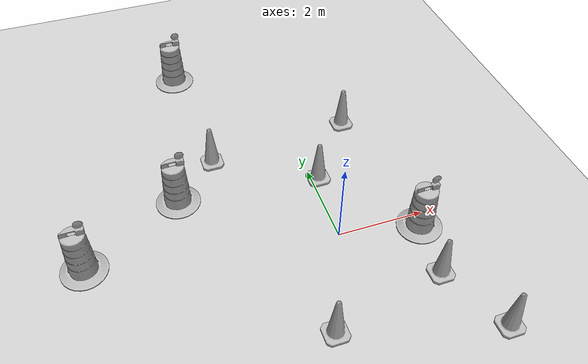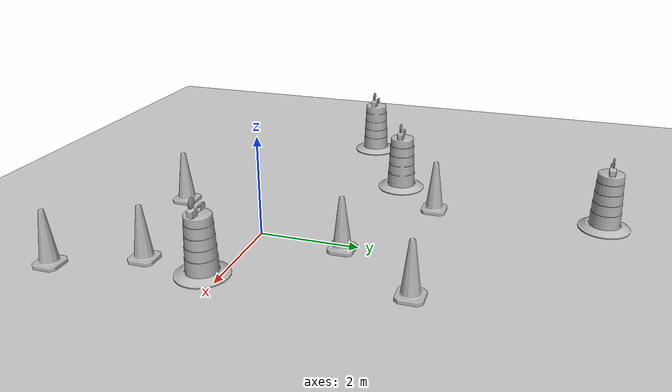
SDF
<sdf version="1.7">
 <world name="default">
  <light name="sun" type="directional">
   <pose>0 0 10 0 -0 0</pose>
   <diffuse>0.8 0.8 0.8 1</diffuse>
   <specular>0.2 0.2 0.2 1</specular>
   <attenuation>
    <range>1000</range>
    <constant>0.9</constant>
    <linear>0.01</linear>
    <quadratic>0.001</quadratic>
   </attenuation>
   <direction>-0.5 0.1 -0.9</direction>
   <spot><inner_angle>0</inner_angle><outer_angle>0</outer_angle><falloff>0</falloff></spot>
  </light>
  <model name="ground_plane">
   <static>1</static>
   <link name="link">
    <collision name="collision">
     <geometry><plane><normal>0 0 1</normal><size>100 100</size></plane></geometry>
     <surface>
      <contact><collide_bitmask>65535</collide_bitmask></contact>
      <friction><ode><mu>100</mu><mu2>50</mu2></ode></friction>
     </surface>
    </collision>
    <visual name="visual">
     <cast_shadows>0</cast_shadows>
     <geometry><plane><normal>0 0 1</normal><size>100 100</size></plane></geometry>
     <material>
      <script><uri>file://media/materials/scripts/gazebo.material</uri><name>Gazebo/Grey</name></script>
     </material>
    </visual>
   </link>
  </model>
  <gravity>0 0 -9.8</gravity>
  <magnetic_field>6e-06 2.3e-05 -4.2e-05</magnetic_field>
  <atmosphere type="adiabatic"/>
  <physics type="ode">
   <max_step_size>0.001</max_step_size>
   <real_time_factor>1</real_time_factor>
   <real_time_update_rate>1000</real_time_update_rate>
  </physics>
  <scene><ambient>0.4 0.4 0.4 1</ambient><background>0.7 0.7 0.7 1</background><shadows>1</shadows></scene>
  <audio><device>default</device></audio>
  <spherical_coordinates>
   <surface_model>EARTH_WGS84</surface_model>
   <latitude_deg>0</latitude_deg>
   <longitude_deg>0</longitude_deg>
   <elevation>0</elevation>
   <heading_deg>0</heading_deg>
  </spherical_coordinates>
  <model name="Construction Barrel">
   <link name="link">
    <inertial>
     <pose>0 0 0.4 0 -0 0</pose>
     <mass>500</mass>
     <inertia><ixx>51.2096</ixx><iyy>51.2096</iyy><izz>25</izz><ixy>0</ixy><ixz>0</ixz><iyz>0</iyz></inertia>
    </inertial>
    <collision name="collision">
     <geometry><mesh><uri>model://construction_barrel/meshes/construction_barrel.dae</uri></mesh></geometry>
    </collision>
    <visual name="visual">
     <geometry><mesh><uri>model://construction_barrel/meshes/construction_barrel.dae</uri></mesh></geometry>
    </visual>
   </link>
   <pose>-3.12375 2.06456 -1e-06 -8e-06 -2e-06 -2.1e-05</pose>
  </model>
  <model name="Construction Cone">
   <link name="link">
    <collision name="collision">
     <geometry>
      <mesh><scale>10 10 10</scale><uri>model://construction_cone/meshes/construction_cone.dae</uri></mesh>
     </geometry>
    </collision>
    <visual name="visual">
     <geometry>
      <mesh><scale>10 10 10</scale><uri>model://construction_cone/meshes/construction_cone.dae</uri></mesh>
     </geometry>
    </visual>
    <inertial>
     <inertia><ixx>1</ixx><ixy>0</ixy><ixz>0</ixz><iyy>1</iyy><iyz>0</iyz><izz>1</izz></inertia>
     <mass>1</mass>
    </inertial>
   </link>
   <pose>0.17451 1.72609 -0 0 -0 0</pose>
  </model>
  <model name="Construction Cone_0">
   <link name="link">
    <collision name="collision">
     <geometry>
      <mesh><scale>10 10 10</scale><uri>model://construction_cone/meshes/construction_cone.dae</uri></mesh>
     </geometry>
    </collision>
    <visual name="visual">
     <geometry>
      <mesh><scale>10 10 10</scale><uri>model://construction_cone/meshes/construction_cone.dae</uri></mesh>
     </geometry>
    </visual>
    <inertial>
     <inertia><ixx>1</ixx><ixy>0</ixy><ixz>0</ixz><iyy>1</iyy><iyz>0</iyz><izz>1</izz></inertia>
     <mass>1</mass>
    </inertial>
   </link>
   <pose>1.61753 -1.6118 -0 0 -1e-06 0</pose>
  </model>
  <model name="Construction Cone_1">
   <link name="link">
    <collision name="collision">
     <geometry>
      <mesh><scale>10 10 10</scale><uri>model://construction_cone/meshes/construction_cone.dae</uri></mesh>
     </geometry>
    </collision>
    <visual name="visual">
     <geometry>
      <mesh><scale>10 10 10</scale><uri>model://construction_cone/meshes/construction_cone.dae</uri></mesh>
     </geometry>
    </visual>
    <inertial>
     <inertia><ixx>1</ixx><ixy>0</ixy><ixz>0</ixz><iyy>1</iyy><iyz>0</iyz><izz>1</izz></inertia>
     <mass>1</mass>
    </inertial>
   </link>
   <pose>-2.07505 3.03679 -0 0 -0 0</pose>
  </model>
  <model name="Construction Barrel_1">
   <link name="link">
    <inertial>
     <pose>0 0 0.4 0 -0 0</pose>
     <mass>500</mass>
     <inertia><ixx>51.2096</ixx><iyy>51.2096</iyy><izz>25</izz><ixy>0</ixy><ixz>0</ixz><iyz>0</iyz></inertia>
    </inertial>
    <collision name="collision">
     <geometry><mesh><uri>model://construction_barrel/meshes/construction_barrel.dae</uri></mesh></geometry>
    </collision>
    <visual name="visual">
     <geometry><mesh><uri>model://construction_barrel/meshes/construction_barrel.dae</uri></mesh></geometry>
    </visual>
   </link>
   <pose>1.77854 -0.334593 -2e-06 8e-06 -4e-06 -1.5e-05</pose>
  </model>
  <model name="Construction Barrel_2">
   <link name="link">
    <inertial>
     <pose>0 0 0.4 0 -0 0</pose>
     <mass>500</mass>
     <inertia><ixx>51.2096</ixx><iyy>51.2096</iyy><izz>25</izz><ixy>0</ixy><ixz>0</ixz><iyz>0</iyz></inertia>
    </inertial>
    <collision name="collision">
     <geometry><mesh><uri>model://construction_barrel/meshes/construction_barrel.dae</uri></mesh></geometry>
    </collision>
    <visual name="visual">
     <geometry><mesh><uri>model://construction_barrel/meshes/construction_barrel.dae</uri></mesh></geometry>
    </visual>
   </link>
   <pose>-5.3885 0.834868 0 0 -0 -1.1e-05</pose>
  </model>
  <model name="Construction Cone_2">
   <link name="link">
    <collision name="collision">
     <geometry>
      <mesh><scale>10 10 10</scale><uri>model://construction_cone/meshes/construction_cone.dae</uri></mesh>
     </geometry>
    </collision>
    <visual name="visual">
     <geometry>
      <mesh><scale>10 10 10</scale><uri>model://construction_cone/meshes/construction_cone.dae</uri></mesh>
     </geometry>
    </visual>
    <inertial>
     <inertia><ixx>1</ixx><ixy>0</ixy><ixz>0</ixz><iyy>1</iyy><iyz>0</iyz><izz>1</izz></inertia>
     <mass>1</mass>
    </inertial>
   </link>
   <pose>-0.976776 -2.207 -0 0 -0 0</pose>
  </model>
  <model name="Construction Cone_3">
   <link name="link">
    <collision name="collision">
     <geometry>
      <mesh><scale>10 10 10</scale><uri>model://construction_cone/meshes/construction_cone.dae</uri></mesh>
     </geometry>
    </collision>
    <visual name="visual">
     <geometry>
      <mesh><scale>10 10 10</scale><uri>model://construction_cone/meshes/construction_cone.dae</uri></mesh>
     </geometry>
    </visual>
    <inertial>
     <inertia><ixx>1</ixx><ixy>0</ixy><ixz>0</ixz><iyy>1</iyy><iyz>0</iyz><izz>1</izz></inertia>
     <mass>1</mass>
    </inertial>
   </link>
   <pose>1.42049 3.33308 -0 0 -0 0</pose>
  </model>
  <model name="Construction Barrel_3">
   <link name="link">
    <inertial>
     <pose>0 0 0.4 0 -0 0</pose>
     <mass>500</mass>
     <inertia><ixx>51.2096</ixx><iyy>51.2096</iyy><izz>25</izz><ixy>0</ixy><ixz>0</ixz><iyz>0</iyz></inertia>
    </inertial>
    <collision name="collision">
     <geometry><mesh><uri>model://construction_barrel/meshes/construction_barrel.dae</uri></mesh></geometry>
    </collision>
    <visual name="visual">
     <geometry><mesh><uri>model://construction_barrel/meshes/construction_barrel.dae</uri></mesh></geometry>
    </visual>
   </link>
   <pose>-2.27852 6.44485 -0 0 -0 -8e-06</pose>
  </model>
  <model name="Construction Cone_4">
   <link name="link">
    <collision name="collision">
     <geometry>
      <mesh><scale>10 10 10</scale><uri>model://construction_cone/meshes/construction_cone.dae</uri></mesh>
     </geometry>
    </collision>
    <visual name="visual">
     <geometry>
      <mesh><scale>10 10 10</scale><uri>model://construction_cone/meshes/construction_cone.dae</uri></mesh>
     </geometry>
    </visual>
    <inertial>
     <inertia><ixx>1</ixx><ixy>0</ixy><ixz>0</ixz><iyy>1</iyy><iyz>0</iyz><izz>1</izz></inertia>
     <mass>1</mass>
    </inertial>
   </link>
   <pose>2.29585 -3.1393 -0 0 -0 0</pose>
  </model>
 </world>
</sdf>
